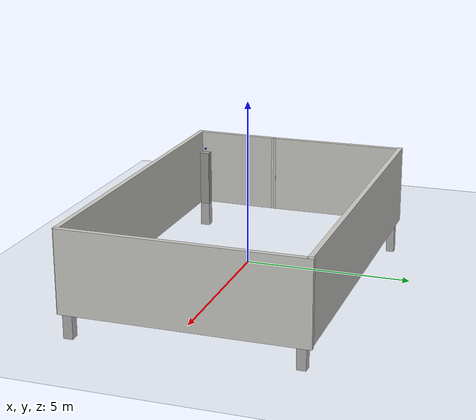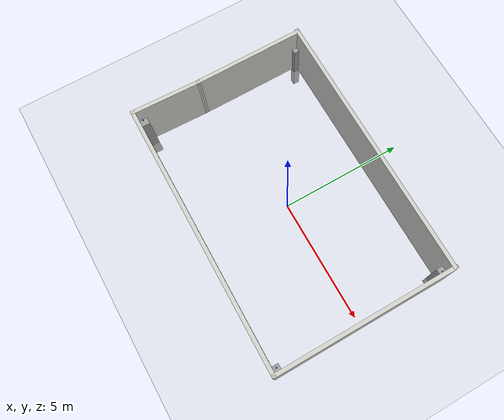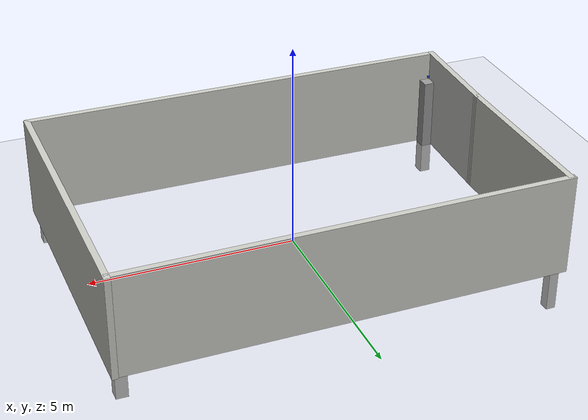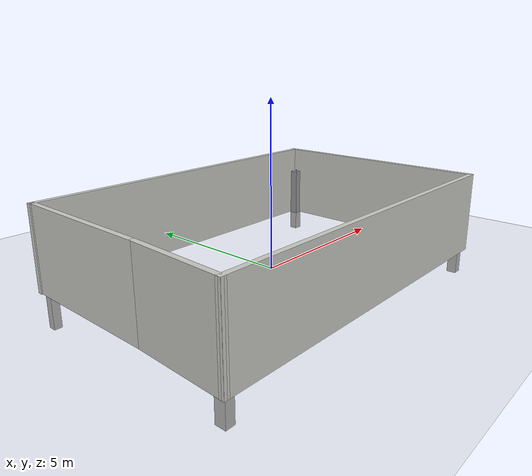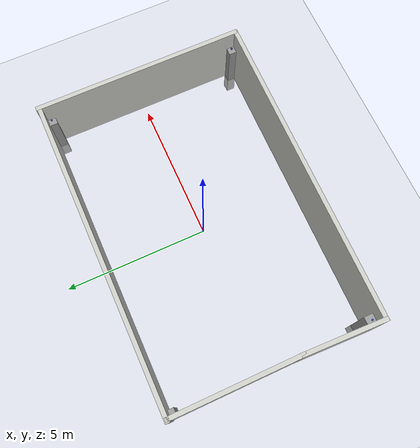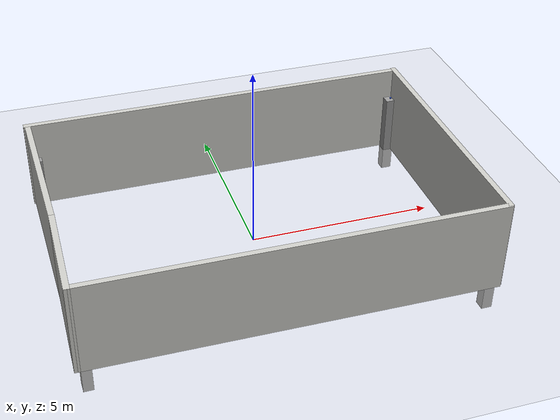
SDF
<sdf version="1.7">
 <world name="default">
  <include><uri>model://ground_plane</uri></include>
  <include><uri>model://sun</uri></include>
  <light name="sun" type="directional">
   <pose>0 0 10 0 -0 0</pose>
   <diffuse>0.8 0.8 0.8 1</diffuse>
   <specular>0.2 0.2 0.2 1</specular>
   <attenuation>
    <range>1000</range>
    <constant>0.9</constant>
    <linear>0.01</linear>
    <quadratic>0.001</quadratic>
   </attenuation>
   <direction>-0.5 0.1 -0.9</direction>
   <spot><inner_angle>0</inner_angle><outer_angle>0</outer_angle><falloff>0</falloff></spot>
  </light>
  <model name="ground_plane">
   <static>1</static>
   <link name="link">
    <collision name="collision">
     <geometry><plane><normal>0 0 1</normal><size>100 100</size></plane></geometry>
     <surface>
      <contact><collide_bitmask>65535</collide_bitmask></contact>
      <friction><ode><mu>100</mu><mu2>50</mu2></ode></friction>
     </surface>
    </collision>
    <visual name="visual">
     <cast_shadows>0</cast_shadows>
     <geometry><plane><normal>0 0 1</normal><size>100 100</size></plane></geometry>
     <material>
      <script><uri>file://media/materials/scripts/gazebo.material</uri><name>Gazebo/Grey</name></script>
     </material>
    </visual>
   </link>
  </model>
  <gravity>0 0 -9.8</gravity>
  <magnetic_field>6e-06 2.3e-05 -4.2e-05</magnetic_field>
  <atmosphere type="adiabatic"/>
  <physics type="ode">
   <max_step_size>0.001</max_step_size>
   <real_time_factor>1</real_time_factor>
   <real_time_update_rate>1000</real_time_update_rate>
  </physics>
  <scene><ambient>0.4 0.4 0.4 1</ambient><background>0.7 0.7 0.7 1</background><shadows>1</shadows></scene>
  <spherical_coordinates>
   <surface_model>EARTH_WGS84</surface_model>
   <latitude_deg>0</latitude_deg>
   <longitude_deg>0</longitude_deg>
   <elevation>0</elevation>
   <heading_deg>0</heading_deg>
  </spherical_coordinates>
  <model name="tello_env">
   <link name="Wall_3">
    <pose>-5.30935 -2.12873 0 0 0 -1.60243</pose>
    <visual name="Wall_3_Visual">
     <pose>0 0 1.25 0 -0 0</pose>
     <geometry><box><size>2.83045 0.15 2.5</size></box></geometry>
     <material>
      <script><uri>file://media/materials/scripts/gazebo.material</uri><name>Gazebo/CeilingTiled</name></script>
      <ambient>0.996078 0.47451 0.0196078 1</ambient>
      <shader type="pixel"/>
     </material>
     <meta><layer>0</layer></meta>
    </visual>
    <collision name="Wall_3_Collision">
     <pose>0 0 1.25 0 -0 0</pose>
     <geometry><box><size>2.83045 0.15 2.5</size></box></geometry>
     <surface>
      <friction>
       <ode><mu>1</mu><mu2>1</mu2><fdir1>0 0 0</fdir1><slip1>0</slip1><slip2>0</slip2></ode>
       <torsional>
        <coefficient>1</coefficient>
        <patch_radius>0</patch_radius>
        <surface_radius>0</surface_radius>
        <use_patch_radius>1</use_patch_radius>
        <ode><slip>0</slip></ode>
       </torsional>
      </friction>
      <bounce><restitution_coefficient>0</restitution_coefficient><threshold>1e+06</threshold></bounce>
      <contact>
       <collide_without_contact>0</collide_without_contact>
       <collide_without_contact_bitmask>1</collide_without_contact_bitmask>
       <collide_bitmask>1</collide_bitmask>
       <ode>
        <soft_cfm>0</soft_cfm>
        <soft_erp>0.2</soft_erp>
        <kp>1e+13</kp>
        <kd>1</kd>
        <max_vel>0.01</max_vel>
        <min_depth>0</min_depth>
       </ode>
       <bullet>
        <split_impulse>1</split_impulse>
        <split_impulse_penetration_threshold>-0.01</split_impulse_penetration_threshold>
        <soft_cfm>0</soft_cfm>
        <soft_erp>0.2</soft_erp>
        <kp>1e+13</kp>
        <kd>1</kd>
       </bullet>
      </contact>
     </surface>
    </collision>
   </link>
   <link name="Wall_4">
    <pose>-0.015892 -3.51762 0 0 0 -0.009201</pose>
    <visual name="Wall_4_Visual">
     <pose>0 0 1.25 0 -0 0</pose>
     <geometry><box><size>10.8222 0.15 2.5</size></box></geometry>
     <material>
      <script><uri>file://media/materials/scripts/gazebo.material</uri><name>Gazebo/CeilingTiled</name></script>
      <ambient>0.996078 0.47451 0.0196078 1</ambient>
      <shader type="pixel"/>
     </material>
     <meta><layer>0</layer></meta>
    </visual>
    <collision name="Wall_4_Collision">
     <pose>0 0 1.25 0 -0 0</pose>
     <geometry><box><size>10.8222 0.15 2.5</size></box></geometry>
     <surface>
      <friction>
       <ode><mu>1</mu><mu2>1</mu2><fdir1>0 0 0</fdir1><slip1>0</slip1><slip2>0</slip2></ode>
       <torsional>
        <coefficient>1</coefficient>
        <patch_radius>0</patch_radius>
        <surface_radius>0</surface_radius>
        <use_patch_radius>1</use_patch_radius>
        <ode><slip>0</slip></ode>
       </torsional>
      </friction>
      <bounce><restitution_coefficient>0</restitution_coefficient><threshold>1e+06</threshold></bounce>
      <contact>
       <collide_without_contact>0</collide_without_contact>
       <collide_without_contact_bitmask>1</collide_without_contact_bitmask>
       <collide_bitmask>1</collide_bitmask>
       <ode>
        <soft_cfm>0</soft_cfm>
        <soft_erp>0.2</soft_erp>
        <kp>1e+13</kp>
        <kd>1</kd>
        <max_vel>0.01</max_vel>
        <min_depth>0</min_depth>
       </ode>
       <bullet>
        <split_impulse>1</split_impulse>
        <split_impulse_penetration_threshold>-0.01</split_impulse_penetration_threshold>
        <soft_cfm>0</soft_cfm>
        <soft_erp>0.2</soft_erp>
        <kp>1e+13</kp>
        <kd>1</kd>
       </bullet>
      </contact>
     </surface>
    </collision>
   </link>
   <link name="Wall_5">
    <pose>5.35407 0.017399 0 0 -0 1.5708</pose>
    <visual name="Wall_5_Visual">
     <pose>0 0 1.25 0 -0 0</pose>
     <geometry><box><size>7.25 0.15 2.5</size></box></geometry>
     <material>
      <script><uri>file://media/materials/scripts/gazebo.material</uri><name>Gazebo/CeilingTiled</name></script>
      <ambient>0.996078 0.47451 0.0196078 1</ambient>
      <shader type="pixel"/>
     </material>
     <meta><layer>0</layer></meta>
    </visual>
    <collision name="Wall_5_Collision">
     <pose>0 0 1.25 0 -0 0</pose>
     <geometry><box><size>7.25 0.15 2.5</size></box></geometry>
     <surface>
      <friction>
       <ode><mu>1</mu><mu2>1</mu2><fdir1>0 0 0</fdir1><slip1>0</slip1><slip2>0</slip2></ode>
       <torsional>
        <coefficient>1</coefficient>
        <patch_radius>0</patch_radius>
        <surface_radius>0</surface_radius>
        <use_patch_radius>1</use_patch_radius>
        <ode><slip>0</slip></ode>
       </torsional>
      </friction>
      <bounce><restitution_coefficient>0</restitution_coefficient><threshold>1e+06</threshold></bounce>
      <contact>
       <collide_without_contact>0</collide_without_contact>
       <collide_without_contact_bitmask>1</collide_without_contact_bitmask>
       <collide_bitmask>1</collide_bitmask>
       <ode>
        <soft_cfm>0</soft_cfm>
        <soft_erp>0.2</soft_erp>
        <kp>1e+13</kp>
        <kd>1</kd>
        <max_vel>0.01</max_vel>
        <min_depth>0</min_depth>
       </ode>
       <bullet>
        <split_impulse>1</split_impulse>
        <split_impulse_penetration_threshold>-0.01</split_impulse_penetration_threshold>
        <soft_cfm>0</soft_cfm>
        <soft_erp>0.2</soft_erp>
        <kp>1e+13</kp>
        <kd>1</kd>
       </bullet>
      </contact>
     </surface>
    </collision>
   </link>
   <link name="Wall_6">
    <pose>0.002641 3.5377 0 0 -0 3.14076</pose>
    <visual name="Wall_6_Visual">
     <pose>0 0 1.25 0 -0 0</pose>
     <geometry><box><size>10.7846 0.15 2.5</size></box></geometry>
     <material>
      <script><uri>file://media/materials/scripts/gazebo.material</uri><name>Gazebo/CeilingTiled</name></script>
      <ambient>0.996078 0.47451 0.0196078 1</ambient>
      <shader type="pixel"/>
     </material>
     <meta><layer>0</layer></meta>
    </visual>
    <collision name="Wall_6_Collision">
     <pose>0 0 1.25 0 -0 0</pose>
     <geometry><box><size>10.7846 0.15 2.5</size></box></geometry>
     <surface>
      <friction>
       <ode><mu>1</mu><mu2>1</mu2><fdir1>0 0 0</fdir1><slip1>0</slip1><slip2>0</slip2></ode>
       <torsional>
        <coefficient>1</coefficient>
        <patch_radius>0</patch_radius>
        <surface_radius>0</surface_radius>
        <use_patch_radius>1</use_patch_radius>
        <ode><slip>0</slip></ode>
       </torsional>
      </friction>
      <bounce><restitution_coefficient>0</restitution_coefficient><threshold>1e+06</threshold></bounce>
      <contact>
       <collide_without_contact>0</collide_without_contact>
       <collide_without_contact_bitmask>1</collide_without_contact_bitmask>
       <collide_bitmask>1</collide_bitmask>
       <ode>
        <soft_cfm>0</soft_cfm>
        <soft_erp>0.2</soft_erp>
        <kp>1e+13</kp>
        <kd>1</kd>
        <max_vel>0.01</max_vel>
        <min_depth>0</min_depth>
       </ode>
       <bullet>
        <split_impulse>1</split_impulse>
        <split_impulse_penetration_threshold>-0.01</split_impulse_penetration_threshold>
        <soft_cfm>0</soft_cfm>
        <soft_erp>0.2</soft_erp>
        <kp>1e+13</kp>
        <kd>1</kd>
       </bullet>
      </contact>
     </surface>
    </collision>
   </link>
   <link name="Wall_7">
    <pose>-5.27376 1.35953 0 0 0 -1.56763</pose>
    <visual name="Wall_7_Visual">
     <pose>0 0 1.25 0 -0 0</pose>
     <geometry><box><size>4.44695 0.15 2.5</size></box></geometry>
     <material>
      <script><uri>file://media/materials/scripts/gazebo.material</uri><name>Gazebo/CeilingTiled</name></script>
      <ambient>0.996078 0.47451 0.0196078 1</ambient>
      <shader type="pixel"/>
     </material>
     <meta><layer>0</layer></meta>
    </visual>
    <collision name="Wall_7_Collision">
     <pose>0 0 1.25 0 -0 0</pose>
     <geometry><box><size>4.44695 0.15 2.5</size></box></geometry>
     <surface>
      <friction>
       <ode><mu>1</mu><mu2>1</mu2><fdir1>0 0 0</fdir1><slip1>0</slip1><slip2>0</slip2></ode>
       <torsional>
        <coefficient>1</coefficient>
        <patch_radius>0</patch_radius>
        <surface_radius>0</surface_radius>
        <use_patch_radius>1</use_patch_radius>
        <ode><slip>0</slip></ode>
       </torsional>
      </friction>
      <bounce><restitution_coefficient>0</restitution_coefficient><threshold>1e+06</threshold></bounce>
      <contact>
       <collide_without_contact>0</collide_without_contact>
       <collide_without_contact_bitmask>1</collide_without_contact_bitmask>
       <collide_bitmask>1</collide_bitmask>
       <ode>
        <soft_cfm>0</soft_cfm>
        <soft_erp>0.2</soft_erp>
        <kp>1e+13</kp>
        <kd>1</kd>
        <max_vel>0.01</max_vel>
        <min_depth>0</min_depth>
       </ode>
       <bullet>
        <split_impulse>1</split_impulse>
        <split_impulse_penetration_threshold>-0.01</split_impulse_penetration_threshold>
        <soft_cfm>0</soft_cfm>
        <soft_erp>0.2</soft_erp>
        <kp>1e+13</kp>
        <kd>1</kd>
       </bullet>
      </contact>
     </surface>
    </collision>
   </link>
   <link name="link_1">
    <inertial>
     <mass>0.145453</mass>
     <inertia>
      <ixx>0.0780546</ixx>
      <ixy>0</ixy>
      <ixz>0</ixz>
      <iyy>0.0779226</iyy>
      <iyz>0</iyz>
      <izz>0.00140396</izz>
     </inertia>
    </inertial>
    <pose>-5.14452 3.38778 0.219981 0 -0 0</pose>
    <visual name="visual">
     <geometry><box><size>0.229058 0.251715 2.52512</size></box></geometry>
     <material>
      <lighting>1</lighting>
      <script><uri>file://media/materials/scripts/gazebo.material</uri><name>Gazebo/Grey</name></script>
      <shader type="pixel"/>
     </material>
    </visual>
    <collision name="collision">
     <geometry><box><size>0.229058 0.251715 2.52512</size></box></geometry>
     <surface>
      <friction>
       <ode><mu>1</mu><mu2>1</mu2><fdir1>0 0 0</fdir1><slip1>0</slip1><slip2>0</slip2></ode>
       <torsional>
        <coefficient>1</coefficient>
        <patch_radius>0</patch_radius>
        <surface_radius>0</surface_radius>
        <use_patch_radius>1</use_patch_radius>
        <ode><slip>0</slip></ode>
       </torsional>
      </friction>
      <bounce><restitution_coefficient>0</restitution_coefficient><threshold>1e+06</threshold></bounce>
      <contact>
       <collide_without_contact>0</collide_without_contact>
       <collide_without_contact_bitmask>1</collide_without_contact_bitmask>
       <collide_bitmask>1</collide_bitmask>
       <ode>
        <soft_cfm>0</soft_cfm>
        <soft_erp>0.2</soft_erp>
        <kp>1e+13</kp>
        <kd>1</kd>
        <max_vel>0.01</max_vel>
        <min_depth>0</min_depth>
       </ode>
       <bullet>
        <split_impulse>1</split_impulse>
        <split_impulse_penetration_threshold>-0.01</split_impulse_penetration_threshold>
        <soft_cfm>0</soft_cfm>
        <soft_erp>0.2</soft_erp>
        <kp>1e+13</kp>
        <kd>1</kd>
       </bullet>
      </contact>
     </surface>
    </collision>
   </link>
   <link name="link_3">
    <inertial>
     <mass>0.209705</mass>
     <inertia>
      <ixx>0.120516</ixx>
      <ixy>0</ixy>
      <ixz>0</ixz>
      <iyy>0.12008</iyy>
      <iyz>0</iyz>
      <izz>0.00284342</izz>
     </inertia>
    </inertial>
    <pose>-5.13828 -3.23981 0.5 0 -0 0</pose>
    <visual name="visual">
     <geometry><box><size>0.262498 0.306275 2.60816</size></box></geometry>
     <material>
      <lighting>1</lighting>
      <script><uri>file://media/materials/scripts/gazebo.material</uri><name>Gazebo/Grey</name></script>
      <shader type="pixel"/>
     </material>
    </visual>
    <collision name="collision">
     <geometry><box><size>0.262498 0.306275 2.60816</size></box></geometry>
     <surface>
      <friction>
       <ode><mu>1</mu><mu2>1</mu2><fdir1>0 0 0</fdir1><slip1>0</slip1><slip2>0</slip2></ode>
       <torsional>
        <coefficient>1</coefficient>
        <patch_radius>0</patch_radius>
        <surface_radius>0</surface_radius>
        <use_patch_radius>1</use_patch_radius>
        <ode><slip>0</slip></ode>
       </torsional>
      </friction>
      <bounce><restitution_coefficient>0</restitution_coefficient><threshold>1e+06</threshold></bounce>
      <contact>
       <collide_without_contact>0</collide_without_contact>
       <collide_without_contact_bitmask>1</collide_without_contact_bitmask>
       <collide_bitmask>1</collide_bitmask>
       <ode>
        <soft_cfm>0</soft_cfm>
        <soft_erp>0.2</soft_erp>
        <kp>1e+13</kp>
        <kd>1</kd>
        <max_vel>0.01</max_vel>
        <min_depth>0</min_depth>
       </ode>
       <bullet>
        <split_impulse>1</split_impulse>
        <split_impulse_penetration_threshold>-0.01</split_impulse_penetration_threshold>
        <soft_cfm>0</soft_cfm>
        <soft_erp>0.2</soft_erp>
        <kp>1e+13</kp>
        <kd>1</kd>
       </bullet>
      </contact>
     </surface>
    </collision>
   </link>
   <link name="link_4">
    <inertial>
     <mass>0.182365</mass>
     <inertia>
      <ixx>0.0831225</ixx>
      <ixy>0</ixy>
      <ixz>0</ixz>
      <iyy>0.0831737</iyy>
      <iyz>0</iyz>
      <izz>0.00238793</izz>
     </inertia>
    </inertial>
    <pose>5.19454 3.32834 0.5 0 -0 0</pose>
    <visual name="visual">
     <geometry><box><size>0.283285 0.277273 2.32223</size></box></geometry>
     <material>
      <lighting>1</lighting>
      <script><uri>file://media/materials/scripts/gazebo.material</uri><name>Gazebo/Grey</name></script>
      <shader type="pixel"/>
     </material>
    </visual>
    <collision name="collision">
     <geometry><box><size>0.283285 0.277273 2.32223</size></box></geometry>
     <surface>
      <friction>
       <ode><mu>1</mu><mu2>1</mu2><fdir1>0 0 0</fdir1><slip1>0</slip1><slip2>0</slip2></ode>
       <torsional>
        <coefficient>1</coefficient>
        <patch_radius>0</patch_radius>
        <surface_radius>0</surface_radius>
        <use_patch_radius>1</use_patch_radius>
        <ode><slip>0</slip></ode>
       </torsional>
      </friction>
      <bounce><restitution_coefficient>0</restitution_coefficient><threshold>1e+06</threshold></bounce>
      <contact>
       <collide_without_contact>0</collide_without_contact>
       <collide_without_contact_bitmask>1</collide_without_contact_bitmask>
       <collide_bitmask>1</collide_bitmask>
       <ode>
        <soft_cfm>0</soft_cfm>
        <soft_erp>0.2</soft_erp>
        <kp>1e+13</kp>
        <kd>1</kd>
        <max_vel>0.01</max_vel>
        <min_depth>0</min_depth>
       </ode>
       <bullet>
        <split_impulse>1</split_impulse>
        <split_impulse_penetration_threshold>-0.01</split_impulse_penetration_threshold>
        <soft_cfm>0</soft_cfm>
        <soft_erp>0.2</soft_erp>
        <kp>1e+13</kp>
        <kd>1</kd>
       </bullet>
      </contact>
     </surface>
    </collision>
   </link>
   <link name="link_5">
    <inertial>
     <mass>0.201819</mass>
     <inertia>
      <ixx>0.107326</ixx>
      <ixy>0</ixy>
      <ixz>0</ixz>
      <iyy>0.107282</iyy>
      <iyz>0</iyz>
      <izz>0.0027057</izz>
     </inertia>
    </inertial>
    <pose>5.17248 -3.37774 0.5 0 -0 0</pose>
    <visual name="visual">
     <geometry><box><size>0.281288 0.285931 2.50994</size></box></geometry>
     <material>
      <lighting>1</lighting>
      <script><uri>file://media/materials/scripts/gazebo.material</uri><name>Gazebo/Grey</name></script>
      <shader type="pixel"/>
     </material>
    </visual>
    <collision name="collision">
     <geometry><box><size>0.281288 0.285931 2.50994</size></box></geometry>
     <surface>
      <friction>
       <ode><mu>1</mu><mu2>1</mu2><fdir1>0 0 0</fdir1><slip1>0</slip1><slip2>0</slip2></ode>
       <torsional>
        <coefficient>1</coefficient>
        <patch_radius>0</patch_radius>
        <surface_radius>0</surface_radius>
        <use_patch_radius>1</use_patch_radius>
        <ode><slip>0</slip></ode>
       </torsional>
      </friction>
      <bounce><restitution_coefficient>0</restitution_coefficient><threshold>1e+06</threshold></bounce>
      <contact>
       <collide_without_contact>0</collide_without_contact>
       <collide_without_contact_bitmask>1</collide_without_contact_bitmask>
       <collide_bitmask>1</collide_bitmask>
       <ode>
        <soft_cfm>0</soft_cfm>
        <soft_erp>0.2</soft_erp>
        <kp>1e+13</kp>
        <kd>1</kd>
        <max_vel>0.01</max_vel>
        <min_depth>0</min_depth>
       </ode>
       <bullet>
        <split_impulse>1</split_impulse>
        <split_impulse_penetration_threshold>-0.01</split_impulse_penetration_threshold>
        <soft_cfm>0</soft_cfm>
        <soft_erp>0.2</soft_erp>
        <kp>1e+13</kp>
        <kd>1</kd>
       </bullet>
      </contact>
     </surface>
    </collision>
   </link>
   <static>1</static>
   <pose>0.020305 -0.053439 0 0 -0 0</pose>
  </model>
  <model name="UWB Sensor">
   <link name="base_link">
    <visual name="visual">
     <geometry><box><size>0.05 0.05 0.05</size></box></geometry>
     <material>
      <script><uri>file://media/materials/scripts/gazebo.material</uri><name>Gazebo/Blue</name></script>
     </material>
    </visual>
    <collision name="collision"><geometry><box><size>0.05 0.05 0.05</size></box></geometry></collision>
    <sensor name="uwb_sensor" type="ray">
     <visualize>1</visualize>
     <ray>
      <scan>
       <horizontal>
        <samples>512</samples>
        <resolution>1</resolution>
        <min_angle>-3.14</min_angle>
        <max_angle>3.14</max_angle>
       </horizontal>
       <vertical>
        <samples>1</samples>
        <resolution>1</resolution>
        <min_angle>0</min_angle>
        <max_angle>0</max_angle>
       </vertical>
      </scan>
      <range><min>0.1</min><max>50</max><resolution>0.01</resolution></range>
      <noise><type>gaussian</type><mean>0</mean><stddev>0.01</stddev></noise>
     </ray>
    </sensor>
    <inertial>
     <inertia><ixx>1</ixx><ixy>0</ixy><ixz>0</ixz><iyy>1</iyy><iyz>0</iyz><izz>1</izz></inertia>
     <mass>1</mass>
    </inertial>
   </link>
   <pose>5.16536 -3.41437 1.88479 0 -0 0</pose>
  </model>
  <model name="UWB Sensor_0">
   <link name="base_link">
    <visual name="visual">
     <geometry><box><size>0.05 0.05 0.05</size></box></geometry>
     <material>
      <script><uri>file://media/materials/scripts/gazebo.material</uri><name>Gazebo/Blue</name></script>
     </material>
    </visual>
    <collision name="collision"><geometry><box><size>0.05 0.05 0.05</size></box></geometry></collision>
    <sensor name="uwb_sensor" type="ray">
     <visualize>1</visualize>
     <ray>
      <scan>
       <horizontal>
        <samples>512</samples>
        <resolution>1</resolution>
        <min_angle>-3.14</min_angle>
        <max_angle>3.14</max_angle>
       </horizontal>
       <vertical>
        <samples>1</samples>
        <resolution>1</resolution>
        <min_angle>0</min_angle>
        <max_angle>0</max_angle>
       </vertical>
      </scan>
      <range><min>0.1</min><max>50</max><resolution>0.01</resolution></range>
      <noise><type>gaussian</type><mean>0</mean><stddev>0.01</stddev></noise>
     </ray>
    </sensor>
    <inertial>
     <inertia><ixx>1</ixx><ixy>0</ixy><ixz>0</ixz><iyy>1</iyy><iyz>0</iyz><izz>1</izz></inertia>
     <mass>1</mass>
    </inertial>
   </link>
   <pose>-5.16689 -3.30826 1.92345 0 -0 0</pose>
  </model>
  <model name="UWB Sensor_1">
   <link name="base_link">
    <visual name="visual">
     <geometry><box><size>0.05 0.05 0.05</size></box></geometry>
     <material>
      <script><uri>file://media/materials/scripts/gazebo.material</uri><name>Gazebo/Blue</name></script>
     </material>
    </visual>
    <collision name="collision"><geometry><box><size>0.05 0.05 0.05</size></box></geometry></collision>
    <sensor name="uwb_sensor" type="ray">
     <visualize>1</visualize>
     <ray>
      <scan>
       <horizontal>
        <samples>512</samples>
        <resolution>1</resolution>
        <min_angle>-3.14</min_angle>
        <max_angle>3.14</max_angle>
       </horizontal>
       <vertical>
        <samples>1</samples>
        <resolution>1</resolution>
        <min_angle>0</min_angle>
        <max_angle>0</max_angle>
       </vertical>
      </scan>
      <range><min>0.1</min><max>50</max><resolution>0.01</resolution></range>
      <noise><type>gaussian</type><mean>0</mean><stddev>0.01</stddev></noise>
     </ray>
    </sensor>
    <inertial>
     <inertia><ixx>1</ixx><ixy>0</ixy><ixz>0</ixz><iyy>1</iyy><iyz>0</iyz><izz>1</izz></inertia>
     <mass>1</mass>
    </inertial>
   </link>
   <pose>5.24807 3.28362 1.66615 0 -0 0</pose>
  </model>
 </world>
</sdf>
